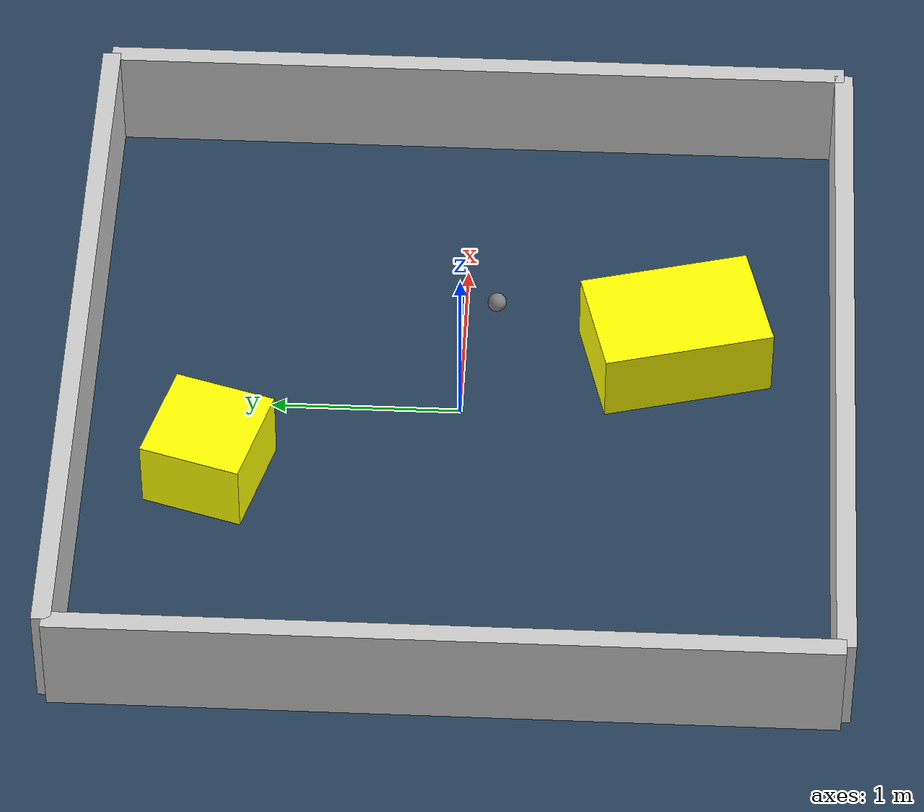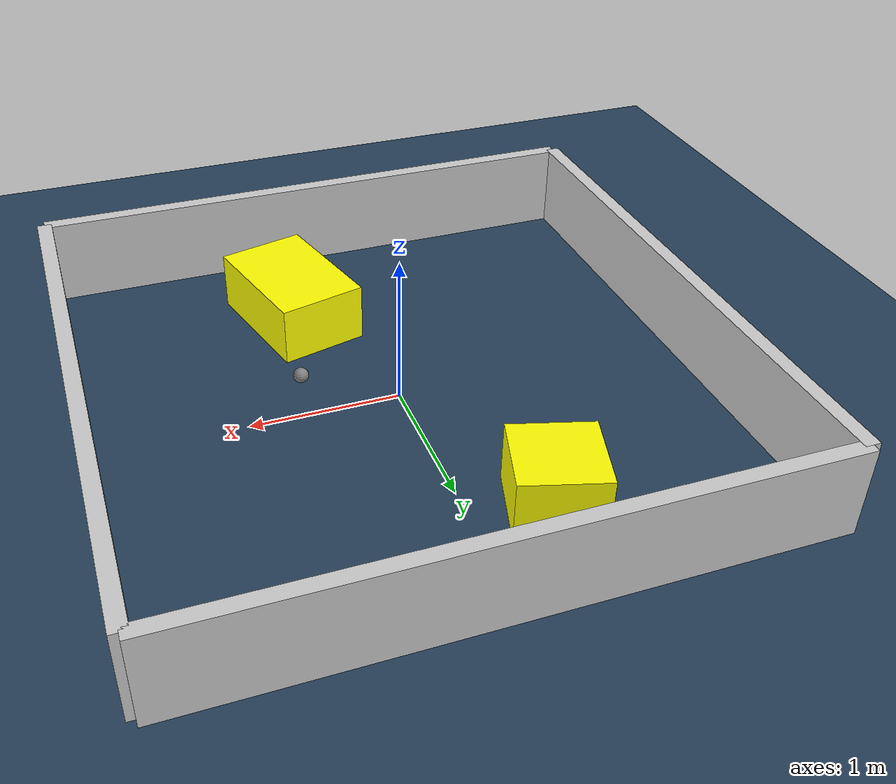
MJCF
<?xml version="1.0" ?>
<mujoco model="generated_environment">
  <option timestep="0.01" integrator="RK4" cone="elliptic"/>
  <default>
    <geom density="1"/>
  </default>
  <asset>
    <texture builtin="gradient" height="3072" rgb1="0.3 0.5 0.7" rgb2="0 0 0" type="skybox" width="512"/>
    <texture builtin="checker" height="300" mark="edge" markrgb="0.8 0.8 0.8" name="groundplane" rgb1="0.2 0.3 0.4" rgb2="0.1 0.2 0.3" type="2d" width="300"/>
    <material name="groundplane" reflectance="0.2" texrepeat="5 5" texture="groundplane" texuniform="true"/>
    <material name="robot" rgba="0.0 1.0 0.0 1"/>
  </asset>
  <worldbody>
    <light dir="0 0 -1" directional="true" pos="0 0 1.5"/>
    <geom condim="4" friction="1.0 0.005 0.001" material="groundplane" name="floor" size="0 0 0.05" type="plane"/>
    <body name="walls">
      <geom name="wall_1" condim="4" pos="-2.0 0.0 0.3" rgba="0.800000011920929 0.800000011920929 0.800000011920929 1.0" size="0.05 2.0 0.3" type="box"/>
      <geom name="wall_2" condim="4" pos="2.0 0.0 0.3" rgba="0.800000011920929 0.800000011920929 0.800000011920929 1.0" size="0.05 2.0 0.3" type="box"/>
      <geom name="wall_3" condim="4" pos="0.0 -2.0 0.3" rgba="0.800000011920929 0.800000011920929 0.800000011920929 1.0" size="2.0 0.05 0.3" type="box"/>
      <geom name="wall_4" condim="4" pos="0.0 2.0 0.3" rgba="0.800000011920929 0.800000011920929 0.800000011920929 1.0" size="2.0 0.05 0.3" type="box"/>
    </body>
    <body name="robot">
      <joint name="joint_x" type="slide" pos="0 0 0" axis="1 0 0"/>
      <joint name="joint_y" type="slide" pos="0 0 0" axis="0 1 0"/>
      <geom name="robot" type="sphere" pos="0.6113152104865516 -0.1670212817754988 0.2" size="0.05" mass="5." friction="1.0 0.005 0.0001" condim="4"/>
      <site name="sensor_ball"/>
    </body>
    <body name="obstacle_1_movable">
      <geom name="obstacle_1_movable" condim="4" pos="0.4202455151767772 -1.123302698254072 0.2" euler="0 0 194.39404911379995" friction="1.0 0.005 0.001" rgba="1 1 0 1" size="0.30314274388692997 0.4533087000694425 0.2" type="box" mass="0.1"/>
      <joint type="free"/>
    </body>
    <body name="obstacle_2_movable">
      <geom name="obstacle_2_movable" condim="4" pos="-0.4972000611131482 1.2932549246934193 0.2" euler="0 0 253.75564508496606" friction="1.0 0.005 0.001" rgba="1 1 0 1" size="0.2705634459530676 0.2741832212242016 0.2" type="box" mass="0.1"/>
      <joint type="free"/>
    </body>
  </worldbody>
  <actuator>
    <motor name="actuator_x" joint="joint_x" gear="1" ctrlrange="-1 1"/>
    <motor name="actuator_y" joint="joint_y" gear="1" ctrlrange="-1 1"/>
  </actuator>
</mujoco>
